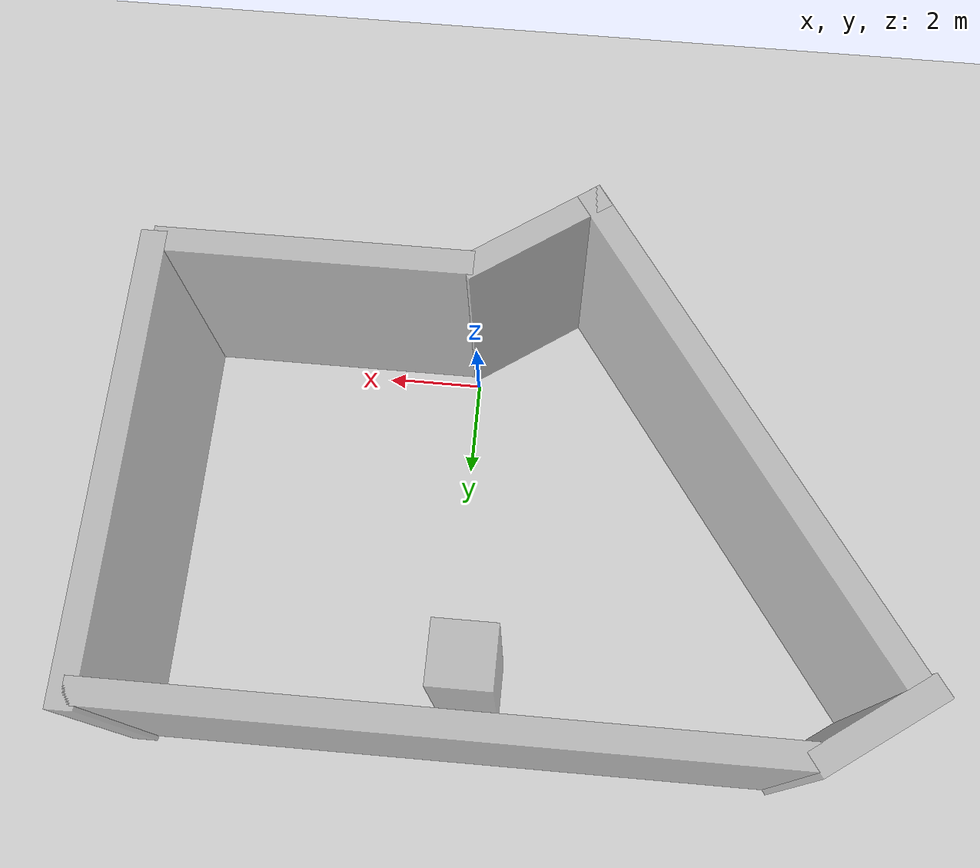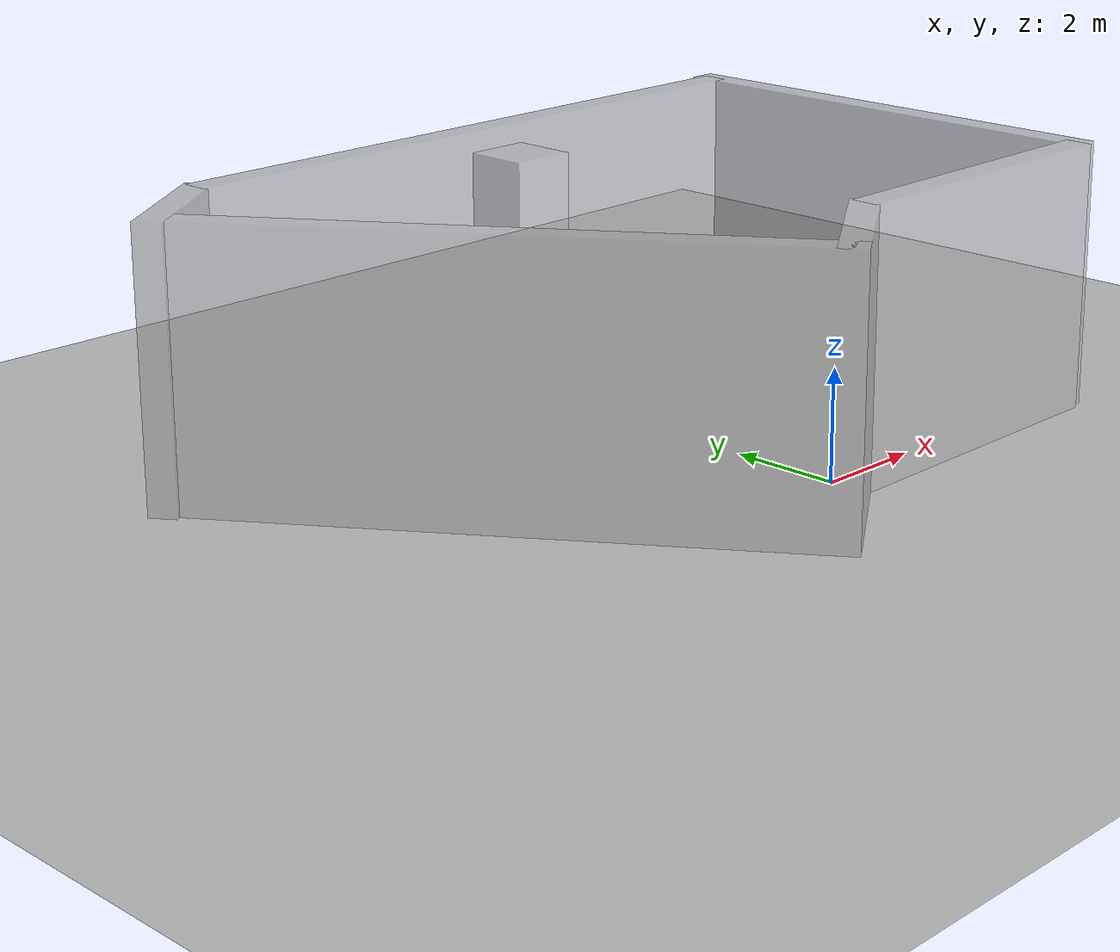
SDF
<?xml version="1.0" ?>
<sdf version="1.4">
  <world name="default">
    <include>
      <uri>model://ground_plane</uri>
    </include>
    <gui>
      <camera name="user_camera">
        <pose>-5 3 9 0 0.9 0</pose>
      </camera>
    </gui>

    <light type="directional" name="my_light" cast_shadows="false">
       <origin pose="0 0 30 0 0 0"/>
       <diffuse rgba=".9 .9 .9 1"/>
       <specular rgba=".1 .1 .1 1"/>
       <attenuation range="50"/>
       <direction xyz="0 0 -1"/>
     </light>

     <light type="point" name="light_1" cast_shadows="true">
        <origin pose="3 2 3 0 0 0"/>
        <diffuse rgba=".9 .9 .9 1"/>
        <specular rgba=".1 .1 .1 1"/>
        <attenuation range="50"/>

      </light>

      <light type="point" name="light_2" cast_shadows="true">
         <origin pose="3 6 3 0 0 0"/>
         <diffuse rgba=".9 .9 .9 1"/>
         <specular rgba=".1 .1 .1 1"/>
         <attenuation range="50"/>

       </light>

       <light type="point" name="light_3" cast_shadows="true">
          <origin pose="-3 2 3 0 0 0"/>
          <diffuse rgba=".9 .9 .9 1"/>
          <specular rgba=".1 .1 .1 1"/>
          <attenuation range="50"/>

        </light>
        <light type="point" name="light_4" cast_shadows="true">
           <origin pose="-3 6 3 0 0 0"/>
           <diffuse rgba=".9 .9 .9 1"/>
           <specular rgba=".1 .1 .1 1"/>
           <attenuation range="50"/>

         </light>
    <model name="back_wall">
      <pose>-0.3 8.03 2.44 0 0 0</pose>
      <static>true</static>
      <link name="base_link">
      <collision name="collision">
         <geometry>
           <box>
             <size>12.8 0.5 4.87</size>
           </box>
         </geometry>
       </collision>
       <visual name="visual">
         <transparency>0.3</transparency>
         <geometry>
           <box>
             <size>12.8 0.5 4.87</size>
           </box>
         </geometry>
       </visual>
       </link>
    </model>

    <model name="right_wall">
      <pose>6.09 3.86 2.44 0 0 1.57 </pose>
      <static>true</static>
      <link name="base_link">
      <collision name="collision">
         <geometry>
           <box>
             <size>9.03 0.5 4.87</size>
           </box>
         </geometry>
       </collision>
       <visual name="visual">
         <transparency>0.3</transparency>
         <geometry>
           <box>
             <size>9.03 0.5 4.87</size>
           </box>
         </geometry>
       </visual>
       </link>
    </model>

    <model name="front_wall">
      <pose>3.05 -0.5 2.44 0 0 0</pose>
      <static>true</static>
      <link name="base_link">
      <collision name="collision">
         <geometry>
           <box>
             <size>6.09 0.5 4.87</size>
           </box>
         </geometry>
       </collision>
       <visual name="visual">
         <transparency>0.3</transparency>
         <geometry>
           <box>
             <size>6.09 0.5 4.87</size>
           </box>
         </geometry>
       </visual>
       </link>
    </model>
    <model name="back_left_wall">
      <pose>-7.57 7.42 2.44 0 0 0.61</pose>
      <static>true</static>
      <link name="base_link">
      <collision name="collision">
         <geometry>
           <box>
             <size>2.33 0.5 4.87</size>
           </box>
         </geometry>
       </collision>
       <visual name="visual">
         <transparency>0.3</transparency>
         <geometry>
           <box>
             <size>2.63 0.5 4.87</size>
           </box>
         </geometry>
       </visual>
       </link>
    </model>
    <model name="door_wall">
      <pose>-1.08 -1.256 2.44 0 0 0.61</pose>
      <static>true</static>
      <link name="base_link">
      <collision name="collision">
         <geometry>
           <box>
             <size>3.14 0.5 4.87</size>
           </box>
         </geometry>
       </collision>
       <visual name="visual">
         <transparency>0.3</transparency>
         <geometry>
           <box>
             <size>3.14 0.5 4.87</size>
           </box>
         </geometry>
       </visual>
       </link>
    </model>
    <model name="left_wall">
      <pose>-5.22 2.36 2.44 0 0 2.18</pose>
      <static>true</static>
      <link name="base_link">
      <collision name="collision">
         <geometry>
           <box>
             <size>11.17 0.5 4.87</size>
           </box>
         </geometry>
       </collision>
       <visual name="visual">
         <transparency>0.3</transparency>
         <geometry>
           <box>
             <size>11.17 0.5 4.87</size>
           </box>
         </geometry>
       </visual>
       </link>
    </model>
    <model name="column">
      <pose>-0.5 6.81 2.18 0 0 0</pose>
      <static>true</static>
      <link name="base_link">
      <collision name="collision">
         <geometry>
           <box>
             <size>1.2 1.2 4.87</size>
           </box>
         </geometry>
       </collision>
       <visual name="visual">
         <transparency>0.3</transparency>
         <geometry>
           <box>
             <size>1.2 1.2 4.87</size>
           </box>
         </geometry>
       </visual>
       </link>
    </model>
  </world>
</sdf>
